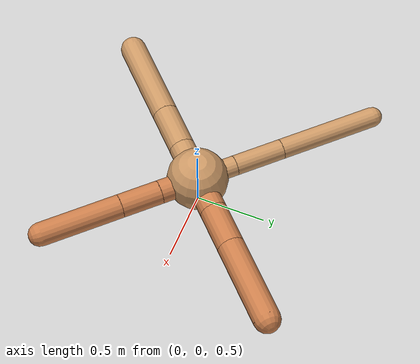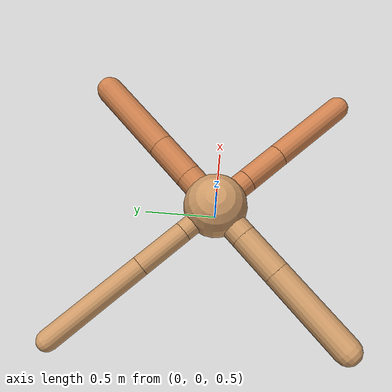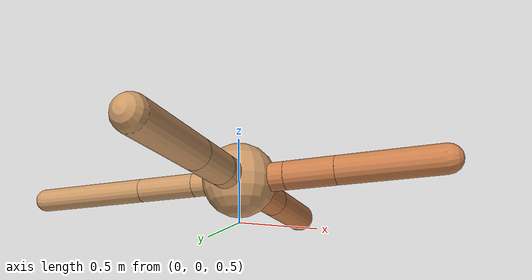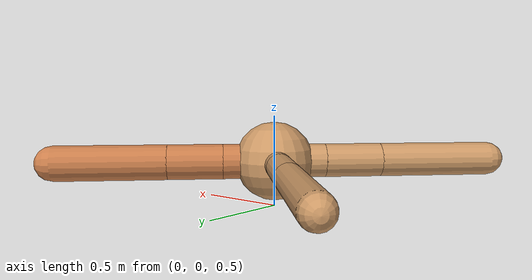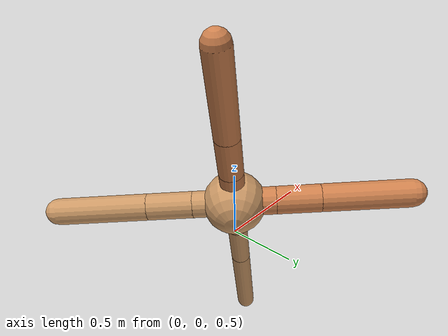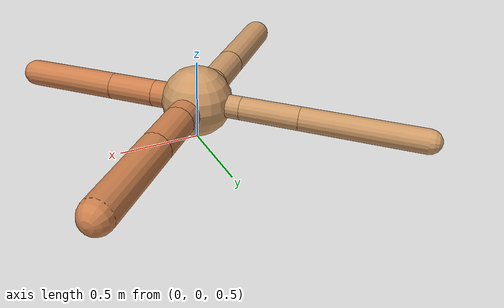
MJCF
<?xml version="1.0" ?>
<mujoco model="ant">

	<compiler angle="degree" coordinate="local" inertiafromgeom="true"/>

	<option integrator="RK4" timestep="0.01"/>

	<custom>

		<numeric data="0.0 0.0 0.55 1.0 0.0 0.0 0.0 0.0 1.0 0.0 -1.0 0.0 -1.0 0.0 1.0" name="init_qpos"/>

	</custom>

	<default>

		<joint armature="1" damping="1" limited="true"/>

		<geom conaffinity="0" condim="3" density="5.0" friction="1.5 0.1 0.1" margin="0.01" rgba="0.8 0.6 0.4 1"/>

	</default>

	<worldbody>

		<body name="torso" pos="0 0 0.75">

			<geom name="torso_geom" pos="0 0 0" size="0.21632416727125053" type="sphere"/>

			<!--joint armature="0" damping="0" limited="false" margin="0.01" name="root" pos="0 0 0" type="free"/-->

			<body name="front_left_leg" pos="0 0 0">

				<geom fromto="0 0 0 0.2 0.2 0" name="aux_1_geom" size="0.09570093882295735" type="capsule" rgba=".8 .5 .3 1"/>

				<body name="aux_1" pos="0.2 0.2 0">

					<joint axis="0 0 1" name="hip_1" pos="0.0 0.0 0.0" range="-40 40" type="hinge"/>

					<geom fromto="0 0 0 0.21222670941462135 0.21222670941462135 0" name="left_leg_geom" size="0.09570093882295735" type="capsule" rgba=".8 .5 .3 1"/>

					<body pos="0.21222670941462135 0.21222670941462135 0" name="front_left_foot">

						<joint axis="-1 1 0" name="ankle_1" pos="0.0 0.0 0.0" range="30 100" type="hinge"/>

						<geom fromto="0 0 0 0.4244534188292427 0.4244534188292427 0" name="left_ankle_geom" size="0.09570093882295735" type="capsule" rgba=".8 .5 .3 1"/>

					</body>

				</body>

			</body>

			<body name="front_right_leg" pos="0 0 0">

				<geom fromto="0 0 0 -0.2 0.2 0" name="aux_2_geom" size="0.07063723833827984" type="capsule"/>

				<body name="aux_2" pos="-0.2 0.2 0">

					<joint axis="0 0 1" name="hip_2" pos="0.0 0.0 0.0" range="-40 40" type="hinge"/>

					<geom fromto="0 0 0 -0.2507863785473461 0.2507863785473461 0" name="right_leg_geom" size="0.07063723833827984" type="capsule"/>

					<body pos="-0.2507863785473461 0.2507863785473461 0" name="front_right_foot">

						<joint axis="1 1 0" name="ankle_2" pos="0.0 0.0 0.0" range="-100 -30" type="hinge"/>

						<geom fromto="0 0 0 -0.5015727570946922 0.5015727570946922 0" name="right_ankle_geom" size="0.07063723833827984" type="capsule"/>

					</body>

				</body>

			</body>

			<body name="left_back_leg" pos="0 0 0">

				<geom fromto="0 0 0 -0.2 -0.2 0" name="aux_3_geom" size="0.09236719837604651" type="capsule"/>

				<body name="aux_3" pos="-0.2 -0.2 0">

					<joint axis="0 0 1" name="hip_3" pos="0.0 0.0 0.0" range="-40 40" type="hinge"/>

					<geom fromto="0 0 0 -0.2218978884606551 -0.2218978884606551 0" name="back_leg_geom" size="0.09236719837604651" type="capsule"/>

					<body pos="-0.2218978884606551 -0.2218978884606551 0" name="left_back_foot">

						<joint axis="-1 1 0" name="ankle_3" pos="0.0 0.0 0.0" range="-100 -30" type="hinge"/>

						<geom fromto="0 0 0 -0.4437957769213102 -0.4437957769213102 0" name="third_ankle_geom" size="0.09236719837604651" type="capsule"/>

					</body>

				</body>

			</body>

			<body name="right_back_leg" pos="0 0 0">

				<geom fromto="0 0 0 0.2 -0.2 0" name="aux_4_geom" size="0.08278896926612252" type="capsule" rgba=".8 .5 .3 1"/>

				<body name="aux_4" pos="0.2 -0.2 0">

					<joint axis="0 0 1" name="hip_4" pos="0.0 0.0 0.0" range="-40 40" type="hinge"/>

					<geom fromto="0 0 0 0.20567897892450634 -0.20567897892450634 0" name="rightback_leg_geom" size="0.08278896926612252" type="capsule" rgba=".8 .5 .3 1"/>

					<body pos="0.20567897892450634 -0.20567897892450634 0" name="right_back_foot">

						<joint axis="1 1 0" name="ankle_4" pos="0.0 0.0 0.0" range="30 100" type="hinge"/>

						<geom fromto="0 0 0 0.4113579578490127 -0.4113579578490127 0" name="fourth_ankle_geom" size="0.08278896926612252" type="capsule" rgba=".8 .5 .3 1"/>

					</body>

				</body>

			</body>

		</body>

	</worldbody>

	<actuator>

		<motor ctrllimited="true" ctrlrange="-1.0 1.0" joint="hip_4" gear="150"/>

		<motor ctrllimited="true" ctrlrange="-1.0 1.0" joint="ankle_4" gear="150"/>

		<motor ctrllimited="true" ctrlrange="-1.0 1.0" joint="hip_1" gear="150"/>

		<motor ctrllimited="true" ctrlrange="-1.0 1.0" joint="ankle_1" gear="150"/>

		<motor ctrllimited="true" ctrlrange="-1.0 1.0" joint="hip_2" gear="150"/>

		<motor ctrllimited="true" ctrlrange="-1.0 1.0" joint="ankle_2" gear="150"/>

		<motor ctrllimited="true" ctrlrange="-1.0 1.0" joint="hip_3" gear="150"/>

		<motor ctrllimited="true" ctrlrange="-1.0 1.0" joint="ankle_3" gear="150"/>

	</actuator>

</mujoco>
